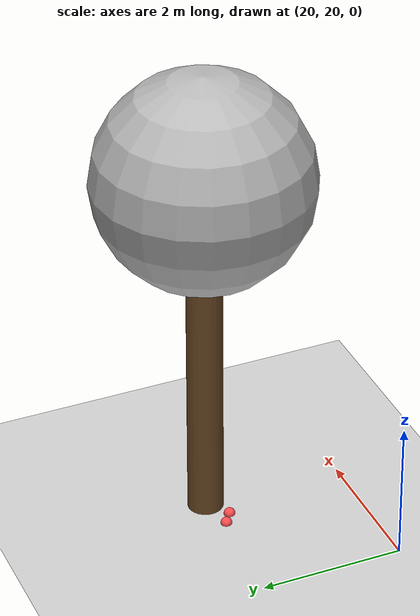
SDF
<sdf version="1.7">
 <world name="default">
  <model name="ground_plane">
   <static>1</static>
   <link name="link">
    <collision name="collision">
     <geometry><plane><normal>0 0 1</normal><size>100 100</size></plane></geometry>
     <surface>
      <contact><collide_bitmask>65535</collide_bitmask></contact>
      <friction><ode><mu>100</mu><mu2>50</mu2></ode></friction>
     </surface>
    </collision>
    <visual name="visual">
     <cast_shadows>0</cast_shadows>
     <geometry><plane><normal>0 0 1</normal><size>100 100</size></plane></geometry>
     <material>
      <script><uri>file://media/materials/scripts/gazebo.material</uri><name>Gazebo/Grey</name></script>
     </material>
    </visual>
   </link>
  </model>
  <model name="tree_simple_43">
   <static>1</static>
   <link name="link">
    <pose>0 0 0.1 0 -0 0</pose>
    <inertial>
     <mass>666</mass>
     <inertia>
      <ixx>0.0861167</ixx>
      <ixy>0</ixy>
      <ixz>0</ixz>
      <iyy>0.0861167</iyy>
      <iyz>0</iyz>
      <izz>0.0861167</izz>
     </inertia>
    </inertial>
    <collision name="collision_trunk">
     <pose>0 0 2 0 -0 0</pose>
     <geometry><cylinder><radius>0.25</radius><length>4</length></cylinder></geometry>
     <surface>
      <contact>
       <poissons_ratio>0.347</poissons_ratio>
       <elastic_modulus>8.8e+09</elastic_modulus>
       <ode><kp>100000</kp><kd>100</kd><max_vel>100</max_vel><min_depth>0.001</min_depth></ode>
      </contact>
      <friction>
       <torsional>
        <coefficient>1</coefficient>
        <use_patch_radius>0</use_patch_radius>
        <surface_radius>0.01</surface_radius>
       </torsional>
      </friction>
     </surface>
    </collision>
    <collision name="collision_treetop">
     <pose>0 0 5.2 0 -0 0</pose>
     <geometry><sphere><radius>1.5</radius></sphere></geometry>
     <surface>
      <contact>
       <poissons_ratio>0.347</poissons_ratio>
       <elastic_modulus>8.8e+09</elastic_modulus>
       <ode><kp>100000</kp><kd>100</kd><max_vel>100</max_vel><min_depth>0.001</min_depth></ode>
      </contact>
      <friction>
       <torsional>
        <coefficient>1</coefficient>
        <use_patch_radius>0</use_patch_radius>
        <surface_radius>0.01</surface_radius>
       </torsional>
      </friction>
     </surface>
    </collision>
    <visual name="trunk">
     <pose>0 0 2 0 -0 0</pose>
     <geometry><cylinder><radius>0.25</radius><length>4</length></cylinder></geometry>
     <material>
      <script>
       <uri>model://tree_simple/scripts</uri>
       <uri>model://tree_simple/materials/textures</uri>
       <name>TreeSimple/Trunk</name>
      </script>
     </material>
    </visual>
    <visual name="treetop">
     <pose>0 0 5.2 0 -0 0</pose>
     <geometry><sphere><radius>1.5</radius></sphere></geometry>
     <material>
      <script>
       <uri>model://tree_simple/scripts</uri>
       <uri>model://tree_simple/materials/textures</uri>
       <name>TreeSimple/Treetop</name>
      </script>
     </material>
    </visual>
   </link>
   <pose>22 22 -0.1 0 -0 0</pose>
  </model>
  <model name="seed_red_199">
   <link name="link">
    <inertial>
     <mass>1</mass>
     <inertia><ixx>0.1</ixx><ixy>0</ixy><ixz>0</ixz><iyy>0.1</iyy><iyz>0</iyz><izz>0.1</izz></inertia>
    </inertial>
    <visual name="visual">
     <geometry><sphere><radius>0.08</radius></sphere></geometry>
     <material>
      <script><name>Gazebo/Grey</name><uri>file://media/materials/scripts/gazebo.material</uri></script>
      <shader type="pixel"><normal_map>__default__</normal_map></shader>
      <ambient>1 0.3 0.3 1</ambient>
      <diffuse>0.7 0.7 0.7 1</diffuse>
      <specular>0.01 0.01 0.01 1</specular>
      <emissive>0 0 0 1</emissive>
     </material>
    </visual>
    <collision name="collision">
     <geometry><sphere><radius>0.0005</radius></sphere></geometry>
     <surface>
      <friction>
       <ode><mu>1</mu><mu2>1</mu2><fdir1>0 0 0</fdir1><slip1>0</slip1><slip2>0</slip2></ode>
       <torsional>
        <coefficient>1</coefficient>
        <patch_radius>0</patch_radius>
        <surface_radius>0</surface_radius>
        <use_patch_radius>1</use_patch_radius>
        <ode><slip>0</slip></ode>
       </torsional>
      </friction>
      <bounce><restitution_coefficient>0</restitution_coefficient><threshold>1e+06</threshold></bounce>
      <contact>
       <collide_without_contact>0</collide_without_contact>
       <collide_without_contact_bitmask>1</collide_without_contact_bitmask>
       <collide_bitmask>1</collide_bitmask>
       <ode>
        <soft_cfm>0</soft_cfm>
        <soft_erp>0.2</soft_erp>
        <kp>1e+13</kp>
        <kd>1</kd>
        <max_vel>0.01</max_vel>
        <min_depth>0</min_depth>
       </ode>
       <bullet>
        <split_impulse>1</split_impulse>
        <split_impulse_penetration_threshold>-0.01</split_impulse_penetration_threshold>
        <soft_cfm>0</soft_cfm>
        <soft_erp>0.2</soft_erp>
        <kp>1e+13</kp>
        <kd>1</kd>
       </bullet>
      </contact>
     </surface>
    </collision>
   </link>
   <static>0</static>
   <pose>21.6755 21.7788 0.0005 0 -0 0</pose>
  </model>
  <model name="seed_red_200">
   <link name="link">
    <inertial>
     <mass>1</mass>
     <inertia><ixx>0.1</ixx><ixy>0</ixy><ixz>0</ixz><iyy>0.1</iyy><iyz>0</iyz><izz>0.1</izz></inertia>
    </inertial>
    <visual name="visual">
     <geometry><sphere><radius>0.08</radius></sphere></geometry>
     <material>
      <script><name>Gazebo/Grey</name><uri>file://media/materials/scripts/gazebo.material</uri></script>
      <shader type="pixel"><normal_map>__default__</normal_map></shader>
      <ambient>1 0.3 0.3 1</ambient>
      <diffuse>0.7 0.7 0.7 1</diffuse>
      <specular>0.01 0.01 0.01 1</specular>
      <emissive>0 0 0 1</emissive>
     </material>
    </visual>
    <collision name="collision">
     <geometry><sphere><radius>0.0005</radius></sphere></geometry>
     <surface>
      <friction>
       <ode><mu>1</mu><mu2>1</mu2><fdir1>0 0 0</fdir1><slip1>0</slip1><slip2>0</slip2></ode>
       <torsional>
        <coefficient>1</coefficient>
        <patch_radius>0</patch_radius>
        <surface_radius>0</surface_radius>
        <use_patch_radius>1</use_patch_radius>
        <ode><slip>0</slip></ode>
       </torsional>
      </friction>
      <bounce><restitution_coefficient>0</restitution_coefficient><threshold>1e+06</threshold></bounce>
      <contact>
       <collide_without_contact>0</collide_without_contact>
       <collide_without_contact_bitmask>1</collide_without_contact_bitmask>
       <collide_bitmask>1</collide_bitmask>
       <ode>
        <soft_cfm>0</soft_cfm>
        <soft_erp>0.2</soft_erp>
        <kp>1e+13</kp>
        <kd>1</kd>
        <max_vel>0.01</max_vel>
        <min_depth>0</min_depth>
       </ode>
       <bullet>
        <split_impulse>1</split_impulse>
        <split_impulse_penetration_threshold>-0.01</split_impulse_penetration_threshold>
        <soft_cfm>0</soft_cfm>
        <soft_erp>0.2</soft_erp>
        <kp>1e+13</kp>
        <kd>1</kd>
       </bullet>
      </contact>
     </surface>
    </collision>
   </link>
   <static>0</static>
   <pose>21.4988 21.9014 0.0005 0 -0 0</pose>
  </model>
 </world>
</sdf>
